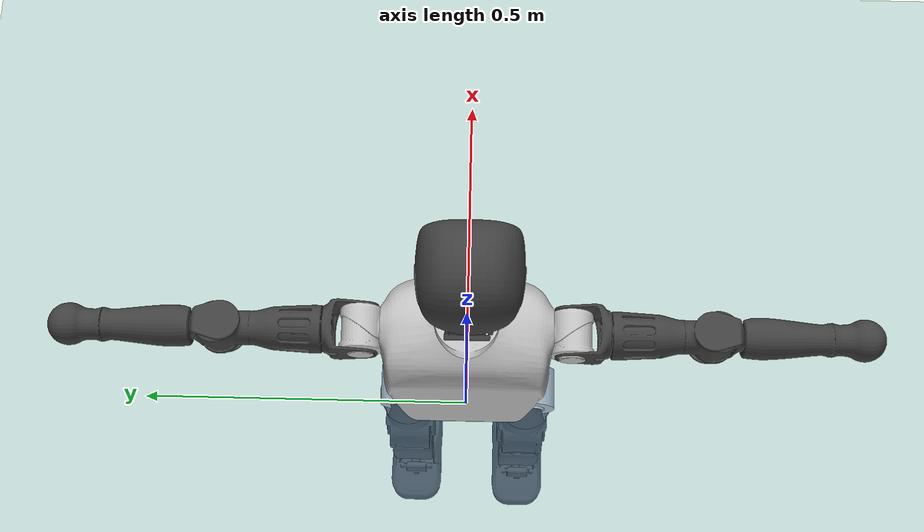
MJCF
<mujoco model="T1">
  <compiler angle="radian" assetdir="assets" balanceinertia="true" inertiafromgeom="false"/>

  <option timestep="0.005" density="1.2" viscosity="2e-05"/>

  <size nkey="1"/>

  <visual>
    <quality shadowsize="8192"/>
    <map shadowclip="0.5"/>
  </visual>

  <default>
    <default class="/">
      <joint armature="0.01" damping="0.01" frictionloss="0.1"/>
      <geom contype="0" conaffinity="0" group="1" solref="-1000 -80"/>
      <site size="0.01 0.005 0.005" group="5"/>
      <general forcelimited="true" biastype="affine" gainprm="25" biasprm="0 -25 -0.6"/>
      <default class="t1">
        <geom rgba="0.25 0.25 0.25 1"/>
        <default class="visual">
          <geom type="mesh" group="2"/>
        </default>
        <default class="collision">
          <geom group="3"/>
        </default>
        <default class="foot">
          <geom size="0.1115 0.05 0.015" type="box" condim="6" group="4" priority="1" solimp="0.015 1 0.015"/>
        </default>
        <default class="reward_collision_sphere">
          <geom group="5" rgba="1 0 0 1"/>
        </default>
      </default>
    </default>
  </default>

  <asset>
    <texture type="skybox" colorspace="auto" name="//unnamed_texture_0" builtin="gradient" rgb1="0.95 0.95 0.95" rgb2="0.95 0.95 0.95" width="100" height="600"/>
    <texture type="2d" colorspace="auto" name="texplane" builtin="checker" rgb1="0.345 0.575 0.748" rgb2="0.345 0.575 0.748" markrgb="1 1 1" width="512" height="512"/>
    <material name="MatPlane" class="/" texture="texplane" texuniform="true" texrepeat="2 2" specular="0.9"/>
    <mesh name="Trunk" class="/" file="Trunk.stl"/>
    <mesh name="H1" class="/" file="H1.stl"/>
    <mesh name="H2" class="/" file="H2.stl"/>
    <mesh name="AL1" class="/" file="AL1.stl"/>
    <mesh name="AL2" class="/" file="AL2.stl"/>
    <mesh name="AL3" class="/" file="AL3.stl"/>
    <mesh name="left_hand_link" class="/" file="left_hand_link.stl"/>
    <mesh name="AR1" class="/" file="AR1.stl"/>
    <mesh name="AR2" class="/" file="AR2.stl"/>
    <mesh name="AR3" class="/" file="AR3.stl"/>
    <mesh name="right_hand_link" class="/" file="right_hand_link.stl"/>
    <mesh name="Waist" class="/" file="Waist.stl"/>
    <mesh name="Hip_Pitch_Left" class="/" file="Hip_Pitch_Left.stl"/>
    <mesh name="Hip_Roll_Left" class="/" file="Hip_Roll_Left.stl"/>
    <mesh name="Hip_Yaw_Left" class="/" file="Hip_Yaw_Left.stl"/>
    <mesh name="Shank_Left" class="/" file="Shank_Left.stl"/>
    <mesh name="Ankle_Cross_Left" class="/" file="Ankle_Cross_Left.stl"/>
    <mesh name="left_foot_link" class="/" file="left_foot_link.stl"/>
    <mesh name="Hip_Pitch_Right" class="/" file="Hip_Pitch_Right.stl"/>
    <mesh name="Hip_Roll_Right" class="/" file="Hip_Roll_Right.stl"/>
    <mesh name="Hip_Yaw_Right" class="/" file="Hip_Yaw_Right.stl"/>
    <mesh name="Shank_Right" class="/" file="Shank_Right.stl"/>
    <mesh name="Ankle_Cross_Right" class="/" file="Ankle_Cross_Right.stl"/>
    <mesh name="right_foot_link" class="/" file="right_foot_link.stl"/>
  </asset>

  <worldbody>
    <geom name="floor" class="/" size="100 100 0.125" type="plane" group="0" material="MatPlane"/>
    <light name="toplight_shadow" class="/" pos="0 0 5" dir="0.0990148 0.0990148 -0.990148" type="directional" ambient="0.04 0.04 0.04" diffuse="0.55 0.55 0.55" specular="0.12 0.12 0.12"/>
    <light name="toplight_fill" class="/" pos="0 0 5" dir="0.0990148 0.0990148 -0.990148" type="directional" castshadow="false" ambient="0.04 0.04 0.04" diffuse="0.3 0.3 0.3" specular="0.08 0.08 0.08"/>
    <body name="trunk" childclass="t1" pos="2.17452e-05 0.000742403 0.000417163" quat="1 0.000148373 -9.05614e-05 0.000181762">
      <inertial pos="0.0504785 0.000250795 0.108776" quat="0.999954 0.00265348 -0.00917229 -0.000172953" mass="10.4682" diaginertia="0.0606125 0.0586893 0.0663964"/>
      <joint name="//unnamed_joint_0" type="free" armature="0" damping="0" frictionloss="0"/>
      <geom name="//unnamed_geom_1" class="visual" rgba="0.76 0.76 0.76 1" mesh="Trunk"/>
      <geom name="//unnamed_geom_2" class="collision" size="0.0722641 0.0963521 0.144528" pos="0.0547269 0 0.123811" type="box"/>
      <geom name="//unnamed_geom_3" class="reward_collision_sphere" size="0.110805" pos="0.0547269 0 0.103176"/>
      <geom name="//unnamed_geom_4" class="reward_collision_sphere" size="0.0144528" pos="0.0547269 0.0804683 0"/>
      <geom name="//unnamed_geom_5" class="reward_collision_sphere" size="0.0144528" pos="0.0547269 -0.0804683 0"/>
      <geom name="//unnamed_geom_6" class="reward_collision_sphere" size="0.0144528" pos="0.0547269 0.101295 0.185717"/>
      <geom name="//unnamed_geom_7" class="reward_collision_sphere" size="0.0144528" pos="0.0547269 -0.101295 0.185717"/>
      <site name="imu" pos="0.00165032 0.000332155 -0.00125186" size="0.00963521"/>
      <camera name="track" pos="0 -1.89337 0" quat="0.707107 0.707107 0 0" mode="trackcom"/>
      <camera name="ego_camera" pos="0.111278 0 0.43334" quat="-0.5 -0.5 0.5 0.5"/>
      <body name="H1" pos="0.0553165 -0.000221248 0.248743" quat="1 -7.05363e-06 4.6069e-06 -6.1389e-06">
        <inertial pos="-0.00121948 -0.0020113 0.0592233" quat="0.763428 -0.0118742 0.00116215 0.645783" mass="0.400043" diaginertia="0.000153329 0.000168388 0.000176193"/>
        <joint name="AAHead_yaw" pos="0 0 0" axis="-0.000528377 6.89717e-05 1" range="-1.56328 1.57311" armature="0.0104675" damping="0.0126891" frictionloss="0.103778"/>
        <geom name="//unnamed_geom_8" class="visual" mesh="H1"/>
        <body name="H2" pos="0.000457905 -0.0025624 0.0644689" quat="1 -0.000316134 0.000335238 0.000214889">
          <inertial pos="0.00714457 -0.000608886 0.0996532" quat="0.988574 0.104406 -0.0717615 -0.0816731" mass="0.560352" diaginertia="0.00129911 0.00143087 0.00202575"/>
          <joint name="Head_pitch" pos="0 0 0" axis="-0.00252367 -0.999988 0.0041764" stiffness="0.000165089" range="-1.21348 0.359513" armature="0.00944098" damping="0" frictionloss="0.0984229"/>
          <geom name="//unnamed_geom_9" class="visual" mesh="H2"/>
          <geom name="//unnamed_geom_10" class="collision" size="0.0770817" pos="0.00912115 0 0.113494"/>
          <geom name="//unnamed_geom_11" class="reward_collision_sphere" size="0.0867169" pos="0.0182423 0 0.103176"/>
        </body>
      </body>
      <body name="AL1" pos="0.0532924 0.101534 0.224412" quat="0.999999 0.000550191 0.000554098 0.000890732">
        <inertial pos="-0.000761077 0.0427775 -0.00030799" quat="0.504421 0.495648 -0.504453 0.495398" mass="0.478558" diaginertia="0.000869656 0.000967231 0.000339953"/>
        <joint name="Left_Shoulder_Pitch" pos="0 0 0" axis="0.005077 0.999986 -0.00173162" stiffness="0.00239753" range="-3.2967 1.26011" armature="0.00964072" damping="0" frictionloss="0.0930881"/>
        <geom name="//unnamed_geom_12" class="visual" rgba="0.76 0.76 0.76 1" mesh="AL1"/>
        <body name="AL2" pos="-0.000189645 0.0438709 -0.000690102" quat="1 -8.6258e-05 0.000192943 0.000133512">
          <inertial pos="0.0043712 0.0374973 0.000467484" quat="0.488494 0.510742 -0.488008 0.512215" mass="0.141681" diaginertia="0.000251885 0.000260977 0.0002073"/>
          <joint name="Left_Shoulder_Roll" pos="0 0 0" axis="-0.999998 -0.0017078 0.00138507" range="-1.58819 1.73978" armature="0.0105379" damping="0.00773016" frictionloss="0.0956529"/>
          <geom name="//unnamed_geom_13" class="visual" mesh="AL2"/>
          <body name="AL3" pos="-0.000113725 0.0579647 -0.000421763" quat="1 4.06929e-06 0.000359753 1.50611e-05">
            <inertial pos="0.000965094 0.0789991 -0.00117515" quat="0.705399 0.708807 0.000565516 -0.00214894" mass="0.88571" diaginertia="0.00816471 0.00965028 0.000714286"/>
            <joint name="Left_Elbow_Pitch" pos="0 0 0" axis="-0.00447263 -0.99999 -0.000930089" stiffness="0.0010187" range="-2.31385 2.28955" armature="0.0107803" damping="0.00881751" frictionloss="0.096797"/>
            <geom name="//unnamed_geom_14" class="visual" mesh="AL3"/>
            <geom name="//unnamed_geom_15" class="collision" size="0.0289056 0.0722641" pos="0 0.0473343 0" quat="0.707105 0.707108 0 0" type="cylinder"/>
            <geom name="//unnamed_geom_16" class="reward_collision_sphere" size="0.0346868"/>
            <body name="left_hand_link" pos="0.00110993 0.13947 0.000604375" quat="1 0.000205369 -0.000638818 0.000643401">
              <inertial pos="-0.00197741 0.102855 0.00011822" quat="0.709404 0.704801 0.00119549 0.000335088" mass="0.294171" diaginertia="0.00506685 0.00611598 0.000256441"/>
              <joint name="Left_Elbow_Yaw" pos="0 0 0" axis="0.00151015 -0.00109109 0.999998" stiffness="0.000730638" range="-2.44553 -0.0386616" armature="0.00946682" damping="0.00854456" frictionloss="0.094785"/>
              <geom name="//unnamed_geom_17" class="visual" mesh="left_hand_link"/>
              <geom name="//unnamed_geom_18" class="collision" size="0.0289056 0.0843081" pos="0 0.123069 0" quat="0.707105 0.707108 0 0" type="cylinder"/>
              <geom name="//unnamed_geom_19" class="reward_collision_sphere" size="0.0481761"/>
              <geom name="//unnamed_geom_20" class="reward_collision_sphere" size="0.0337232" pos="0 0.104135 0"/>
              <geom name="//unnamed_geom_21" class="reward_collision_sphere" size="0.0337232" pos="0 0.203537 0"/>
            </body>
          </body>
        </body>
      </body>
      <body name="AR1" pos="0.0509917 -0.101077 0.225294" quat="1 -0.000265486 0.000303844 0.000517479">
        <inertial pos="-0.000820863 -0.0451358 0.000179443" quat="0.503997 0.494896 -0.505358 0.49566" mass="0.461863" diaginertia="0.00085915 0.000965453 0.000332962"/>
        <joint name="Right_Shoulder_Pitch" pos="0 0 0" axis="0.0017993 -0.999955 0.00927366" range="-1.23135 3.32342" armature="0.0102387" damping="0.0136672" frictionloss="0.100444"/>
        <geom name="//unnamed_geom_22" class="visual" rgba="0.76 0.76 0.76 1" mesh="AR1"/>
        <body name="AR2" pos="0.00145198 -0.0433446 0.000388746" quat="1 0.000397916 0.000342075 0.000791551">
          <inertial pos="0.00369392 -0.0354835 0.00104952" quat="0.507838 0.489049 -0.512388 0.490296" mass="0.140063" diaginertia="0.000252771 0.000267555 0.000207267"/>
          <joint name="Right_Shoulder_Roll" pos="0 0 0" axis="-0.999975 0.00457852 0.00534868" range="-1.76051 1.55065" armature="0.00956598" damping="0.00342312" frictionloss="0.107275"/>
          <geom name="//unnamed_geom_23" class="visual" mesh="AR2"/>
          <body name="AR3" pos="-0.00066303 -0.0586795 -0.00240816" quat="1 -2.01318e-05 9.54329e-06 1.21758e-05">
            <inertial pos="-7.96562e-05 -0.0825082 0.00101547" quat="0.704824 0.709365 0.00497192 -0.000706959" mass="0.913331" diaginertia="0.00813303 0.00980287 0.000739156"/>
            <joint name="Right_Elbow_Pitch" pos="0 0 0" axis="0.00545992 0.99998 0.00303313" range="-2.29916 2.27645" armature="0.00878554" damping="0.0100269" frictionloss="0.0960501"/>
            <geom name="//unnamed_geom_24" class="visual" mesh="AR3"/>
            <geom name="//unnamed_geom_25" class="collision" size="0.0289056 0.0722641" pos="0 -0.0473343 0" quat="0.707105 0.707108 0 0" type="cylinder"/>
            <geom name="//unnamed_geom_26" class="reward_collision_sphere" size="0.0346868"/>
            <body name="right_hand_link" pos="-0.000458661 -0.139132 -0.000280827" quat="1 -7.39611e-06 2.27116e-05 -0.000343382">
              <inertial pos="1.36888e-05 -0.102679 0.00281012" quat="0.706233 0.707979 0.000602654 -0.000147183" mass="0.295185" diaginertia="0.00516979 0.00628061 0.000253845"/>
              <joint name="Right_Elbow_Yaw" pos="0 0 0" axis="-0.00342137 -0.00053995 0.999994" stiffness="0.000842136" range="-0.00440003 2.43662" armature="0.0103499" damping="0" frictionloss="0.0984765"/>
              <geom name="//unnamed_geom_27" class="visual" mesh="right_hand_link"/>
              <geom name="//unnamed_geom_28" class="collision" size="0.0289056 0.0843081" pos="0 -0.123069 0" quat="0.707105 0.707108 0 0" type="cylinder"/>
              <geom name="//unnamed_geom_29" class="reward_collision_sphere" size="0.0481761"/>
              <geom name="//unnamed_geom_30" class="reward_collision_sphere" size="0.0337232" pos="0 -0.104135 0"/>
              <geom name="//unnamed_geom_31" class="reward_collision_sphere" size="0.0337232" pos="0 -0.203537 0"/>
            </body>
          </body>
        </body>
      </body>
      <body name="Waist" pos="0.057565 -0.00229816 -0.116852" quat="1 0.000264319 0.000209153 -0.00022985">
        <inertial pos="0.000741671 -3.64435e-05 0.00772959" quat="0.982938 -0.00545038 -0.183827 0.00320715" mass="2.2433" diaginertia="0.00330947 0.0038932 0.00538423"/>
        <joint name="Waist" pos="0 0 0" axis="-0.00747812 0.00258871 0.999969" range="-1.5694 1.54121" armature="0.00965383" damping="0.0104531" frictionloss="0.102638"/>
        <geom name="//unnamed_geom_32" class="visual" mesh="Waist"/>
        <body name="Hip_Pitch_Left" pos="0.00159431 0.100057 -0.00015601" quat="1 0.000409846 0.000434929 5.57047e-05">
          <inertial pos="0.000576269 -0.0066253 -0.0191176" quat="0.975128 0.221089 0.0156733 0.000327224" mass="0.908437" diaginertia="0.00114387 0.00113987 0.0014563"/>
          <joint name="Left_Hip_Pitch" pos="0 0 0" axis="-0.0107246 0.999909 0.00821949" range="-1.79375 1.61021" armature="0.00936958" damping="0.00288767" frictionloss="0.0971744"/>
          <geom name="//unnamed_geom_33" class="visual" rgba="0.76 0.76 0.76 1" mesh="Hip_Pitch_Left"/>
          <body name="Hip_Roll_Left" pos="0.00118789 0.00217388 -0.0201504" quat="0.999999 0.000197685 0.000236945 -0.00127671">
            <inertial pos="0.000264438 -0.000182292 -0.0553371" quat="0.707577 -0.00558583 -0.00148244 0.706612" mass="0.336296" diaginertia="0.00109284 0.00112573 0.000586212"/>
            <joint name="Left_Hip_Roll" pos="0 0 0" axis="-0.99997 -0.000675575 0.00769381" stiffness="0.000798811" range="-1.58793 0.21009" armature="0.0100266" damping="0.00910384" frictionloss="0.0967031"/>
            <geom name="//unnamed_geom_34" class="visual" mesh="Hip_Roll_Left"/>
            <geom name="//unnamed_geom_35" class="reward_collision_sphere" size="0.0529937"/>
            <body name="Hip_Yaw_Left" pos="-0.000164773 -8.6619e-06 -0.0840799" quat="1 0.00010226 -0.000119451 -1.22072e-05">
              <inertial pos="-0.00572964 -0.00105058 -0.0919582" quat="0.70128 -0.0342301 -0.0242247 0.711652" mass="1.92214" diaginertia="0.0161003 0.0187854 0.00296824"/>
              <joint name="Left_Hip_Yaw" pos="0 0 0" axis="-0.00104884 0.000159564 -0.999999" range="-1.01838 1.00976" armature="0.00961029" damping="0.00507524" frictionloss="0.0988511"/>
              <geom name="//unnamed_geom_36" class="visual" mesh="Hip_Yaw_Left"/>
              <geom name="//unnamed_geom_37" class="collision" size="0.0481761 0.0770817" type="cylinder"/>
              <body name="Shank_Left" pos="-0.0109878 -0.00112476 -0.137831" quat="1 0.000182253 0.000180062 -0.000199425">
                <inertial pos="-0.00451828 -0.000171192 -0.128859" quat="0.997499 0.00496588 -0.0275425 0.0649106" mass="1.53132" diaginertia="0.0218288 0.0262517 0.00211882"/>
                <joint name="Left_Knee_Pitch" pos="0 0 0" axis="0.00389154 0.999984 0.0041335" range="-0.0200158 2.35457" armature="0.0103801" damping="0.00542098" frictionloss="0.0988613"/>
                <geom name="//unnamed_geom_38" class="visual" mesh="Shank_Left"/>
                <geom name="//unnamed_geom_39" class="collision" size="0.0481761 0.0722641" pos="0 0 -0.123811" type="cylinder"/>
                <geom name="//unnamed_geom_40" class="reward_collision_sphere" size="0.0626289"/>
                <body name="Ankle_Cross_Left" pos="-2.77364e-05 0.000506579 -0.290174" quat="1 -0.000283683 -0.000467656 0.0006339">
                  <inertial pos="-0.00237201 -0.00196579 -0.00874066" quat="0.442238 0.55049 0.550195 0.445726" mass="0.0652197" diaginertia="1.83927e-05 1.98239e-05 1.33086e-05"/>
                  <joint name="Left_Ankle_Pitch" pos="0 0 0" axis="0.000988941 0.999998 -0.00144904" stiffness="0.00200474" range="-0.866194 0.331733" armature="0.010231" damping="0.00780337" frictionloss="0.0988451"/>
                  <geom name="//unnamed_geom_41" class="visual" mesh="Ankle_Cross_Left"/>
                  <body name="left_foot_link" pos="-0.00127214 -0.00192702 -0.0119814" quat="1 -9.04519e-05 9.35393e-05 0.000118892">
                    <inertial pos="0.0012304 -0.000469356 -0.0071577" quat="-0.00166368 0.62231 -0.00074835 0.782769" mass="0.620498" diaginertia="0.00171895 0.00182694 0.00260535"/>
                    <joint name="Left_Ankle_Roll" pos="0 0 0" axis="-0.999999 0.00121988 0.000959945" range="-0.433677 0.441895" armature="0.00886587" damping="0.0114962" frictionloss="0.0979482"/>
                    <geom name="//unnamed_geom_42" class="visual" mesh="left_foot_link"/>
                    <geom name="left_foot" class="foot" size="0.111825 0.0484818 0.0140595" pos="0.00912115 0 -0.0154764"/>
                    <geom name="//unnamed_geom_44" class="reward_collision_sphere" size="0.0501031" pos="0.00912115 0 -0.0154764"/>
                    <geom name="//unnamed_geom_45" class="reward_collision_sphere" size="0.0289056" pos="0.086651 -0.0217738 -0.0154764"/>
                    <geom name="//unnamed_geom_46" class="reward_collision_sphere" size="0.0289056" pos="-0.0638481 -0.0217738 -0.0154764"/>
                    <site name="left_foot" class="foot" pos="0.00912115 0 -0.0154764" size="0.00963521"/>
                  </body>
                </body>
              </body>
            </body>
          </body>
        </body>
        <body name="Hip_Pitch_Right" pos="-0.0014335 -0.101469 -4.00826e-05" quat="0.999999 -0.000348715 0.00120151 0.000539842">
          <inertial pos="0.000262756 0.00476588 -0.0185612" quat="0.973607 -0.227606 0.0162231 -0.0045631" mass="0.890385" diaginertia="0.00111507 0.00109094 0.00144493"/>
          <joint name="Right_Hip_Pitch" pos="0 0 0" axis="0.00335452 -0.999994 0.000626944" range="-1.57826 1.80671" armature="0.010039" damping="0.0116625" frictionloss="0.106049"/>
          <geom name="//unnamed_geom_47" class="visual" rgba="0.76 0.76 0.76 1" mesh="Hip_Pitch_Right"/>
          <body name="Hip_Roll_Right" pos="-0.000455258 0.00146877 -0.019231" quat="1 0.0001948 -4.48114e-05 0.000191741">
            <inertial pos="-0.00055748 0.00198745 -0.0573501" quat="0.709046 -0.00820332 -0.00902781 0.705057" mass="0.339006" diaginertia="0.00109001 0.00113922 0.000595198"/>
            <joint name="Right_Hip_Roll" pos="0 0 0" axis="-0.999999 -0.00108045 0.000824233" range="-0.208946 1.56822" armature="0.00920146" damping="0.0104356" frictionloss="0.0986559"/>
            <geom name="//unnamed_geom_48" class="visual" mesh="Hip_Roll_Right"/>
            <geom name="//unnamed_geom_49" class="reward_collision_sphere" size="0.0529937"/>
            <body name="Hip_Yaw_Right" pos="-0.000184927 -0.000211201 -0.0832569" quat="1 0.000336388 0.000255794 -6.13446e-05">
              <inertial pos="-0.00648202 -0.000287836 -0.0927548" quat="0.714763 -0.0312369 -0.0334997 0.697865" mass="1.90375" diaginertia="0.016309 0.0190761 0.00307078"/>
              <joint name="Right_Hip_Yaw" pos="0 0 0" axis="0.00373275 0.00206856 -0.999991" stiffness="0.00367627" range="-0.99575 0.980966" armature="0.0085236" damping="0.0135772" frictionloss="0.104961"/>
              <geom name="//unnamed_geom_50" class="visual" mesh="Hip_Yaw_Right"/>
              <geom name="//unnamed_geom_51" class="collision" size="0.0481761 0.0770817" type="cylinder"/>
              <body name="Shank_Right" pos="-0.0138208 0.00133568 -0.138332" quat="1 -0.000592823 0.00043991 -0.000470527">
                <inertial pos="-0.00565775 0.000497666 -0.124585" quat="0.999287 -0.00190913 -0.0239785 -0.0290971" mass="1.58541" diaginertia="0.0223213 0.0264489 0.0023663"/>
                <joint name="Right_Knee_Pitch" pos="0 0 0" axis="-0.00426155 -0.999962 -0.00761399" range="-2.31847 -0.0269054" armature="0.00953795" damping="0.00962274" frictionloss="0.101271"/>
                <geom name="//unnamed_geom_52" class="visual" mesh="Shank_Right"/>
                <geom name="//unnamed_geom_53" class="collision" size="0.0481761 0.0722641" pos="0 0 -0.123811" type="cylinder"/>
                <geom name="//unnamed_geom_54" class="reward_collision_sphere" size="0.0626289"/>
                <body name="Ankle_Cross_Right" pos="-5.44193e-05 -0.00198324 -0.289119" quat="0.999999 0.000404316 0.000914061 -0.000553439">
                  <inertial pos="-0.00236494 0.00111366 -0.00757218" quat="0.441565 0.552736 0.54955 0.444407" mass="0.0654556" diaginertia="1.81596e-05 1.95037e-05 1.30774e-05"/>
                  <joint name="Right_Ankle_Pitch" pos="0 0 0" axis="0.00492306 -0.999981 -0.00375987" stiffness="0.00259846" range="-0.374259 0.876507" armature="0.00978971" damping="0.0098887" frictionloss="0.0945698"/>
                  <geom name="//unnamed_geom_55" class="visual" mesh="Ankle_Cross_Right"/>
                  <body name="right_foot_link" pos="0.000141665 -0.00257717 -0.0115749" quat="1 2.75186e-05 5.32404e-05 -9.92942e-05">
                    <inertial pos="-0.000606682 -0.00108662 -0.0104603" quat="-0.00132939 0.622537 -0.000439921 0.782589" mass="0.620277" diaginertia="0.00171462 0.00181359 0.00255301"/>
                    <joint name="Right_Ankle_Roll" pos="0 0 0" axis="-1 1.8708e-05 -2.18265e-05" range="-0.39252 0.438391" armature="0.0102339" damping="0.00818812" frictionloss="0.0948719"/>
                    <geom name="//unnamed_geom_56" class="visual" mesh="right_foot_link"/>
                    <geom name="right_foot" class="foot" size="0.0938138 0.0481202 0.0140208" pos="0.00912115 0 -0.0154764"/>
                    <geom name="//unnamed_geom_58" class="reward_collision_sphere" size="0.0385408"/>
                    <geom name="//unnamed_geom_59" class="reward_collision_sphere" size="0.0289056" pos="0.00912115 0 -0.0154764"/>
                    <geom name="//unnamed_geom_60" class="reward_collision_sphere" size="0.0289056" pos="0.086651 0.0217738 -0.0154764"/>
                    <geom name="//unnamed_geom_61" class="reward_collision_sphere" size="0.0289056" pos="-0.0638481 0.0217738 -0.0154764"/>
                    <site name="right_foot" class="foot" pos="0.00912115 0 -0.0154764" size="0.00963521"/>
                  </body>
                </body>
              </body>
            </body>
          </body>
        </body>
      </body>
    </body>
  </worldbody>

  <contact>
    <pair class="/" geom1="floor" geom2="left_foot" name="//unnamed_contact_0"/>
    <pair class="/" geom1="floor" geom2="right_foot" name="//unnamed_contact_1"/>
  </contact>

  <actuator>
    <general name="AAHead_yaw" class="/" joint="AAHead_yaw" forcerange="-6.85711 6.85711" gainprm="24.3776" biasprm="0 -24.3776 -0.584271"/>
    <general name="Head_pitch" class="/" joint="Head_pitch" forcerange="-6.79125 6.79125" gainprm="24.3776" biasprm="0 -24.3776 -0.584271"/>
    <general name="Left_Shoulder_Pitch" class="/" joint="Left_Shoulder_Pitch" forcerange="-17.2249 17.2249" gainprm="24.3776" biasprm="0 -24.3776 -0.584271"/>
    <general name="Left_Shoulder_Roll" class="/" joint="Left_Shoulder_Roll" forcerange="-18.0274 18.0274" gainprm="24.3776" biasprm="0 -24.3776 -0.584271"/>
    <general name="Left_Elbow_Pitch" class="/" joint="Left_Elbow_Pitch" forcerange="-17.0893 17.0893" gainprm="24.3776" biasprm="0 -24.3776 -0.584271"/>
    <general name="Left_Elbow_Yaw" class="/" joint="Left_Elbow_Yaw" forcerange="-17.3022 17.3022" gainprm="24.3776" biasprm="0 -24.3776 -0.584271"/>
    <general name="Right_Shoulder_Pitch" class="/" joint="Right_Shoulder_Pitch" forcerange="-17.5384 17.5384" gainprm="24.3776" biasprm="0 -24.3776 -0.584271"/>
    <general name="Right_Shoulder_Roll" class="/" joint="Right_Shoulder_Roll" forcerange="-17.9825 17.9825" gainprm="24.3776" biasprm="0 -24.3776 -0.584271"/>
    <general name="Right_Elbow_Pitch" class="/" joint="Right_Elbow_Pitch" forcerange="-17.0085 17.0085" gainprm="24.3776" biasprm="0 -24.3776 -0.584271"/>
    <general name="Right_Elbow_Yaw" class="/" joint="Right_Elbow_Yaw" forcerange="-17.6404 17.6404" gainprm="24.3776" biasprm="0 -24.3776 -0.584271"/>
    <general name="Waist" class="/" joint="Waist" forcerange="-27.7538 27.7538" gainprm="24.3776" biasprm="0 -24.3776 -0.584271"/>
    <general name="Left_Hip_Pitch" class="/" joint="Left_Hip_Pitch" forcerange="-44.7573 44.7573" gainprm="24.3776" biasprm="0 -24.3776 -0.584271"/>
    <general name="Left_Hip_Roll" class="/" joint="Left_Hip_Roll" forcerange="-29.1565 29.1565" gainprm="24.3776" biasprm="0 -24.3776 -0.584271"/>
    <general name="Left_Hip_Yaw" class="/" joint="Left_Hip_Yaw" forcerange="-29.1066 29.1066" gainprm="24.3776" biasprm="0 -24.3776 -0.584271"/>
    <general name="Left_Knee_Pitch" class="/" joint="Left_Knee_Pitch" forcerange="-55.0309 55.0309" gainprm="24.3776" biasprm="0 -24.3776 -0.584271"/>
    <general name="Left_Ankle_Pitch" class="/" joint="Left_Ankle_Pitch" forcerange="-20.8262 20.8262" gainprm="24.3776" biasprm="0 -24.3776 -0.584271"/>
    <general name="Left_Ankle_Roll" class="/" joint="Left_Ankle_Roll" forcerange="-13.2096 13.2096" gainprm="24.3776" biasprm="0 -24.3776 -0.584271"/>
    <general name="Right_Hip_Pitch" class="/" joint="Right_Hip_Pitch" forcerange="-43.4534 43.4534" gainprm="24.3776" biasprm="0 -24.3776 -0.584271"/>
    <general name="Right_Hip_Roll" class="/" joint="Right_Hip_Roll" forcerange="-27.8076 27.8076" gainprm="24.3776" biasprm="0 -24.3776 -0.584271"/>
    <general name="Right_Hip_Yaw" class="/" joint="Right_Hip_Yaw" forcerange="-30.9503 30.9503" gainprm="24.3776" biasprm="0 -24.3776 -0.584271"/>
    <general name="Right_Knee_Pitch" class="/" joint="Right_Knee_Pitch" forcerange="-56.2295 56.2295" gainprm="24.3776" biasprm="0 -24.3776 -0.584271"/>
    <general name="Right_Ankle_Pitch" class="/" joint="Right_Ankle_Pitch" forcerange="-19.1262 19.1262" gainprm="24.3776" biasprm="0 -24.3776 -0.584271"/>
    <general name="Right_Ankle_Roll" class="/" joint="Right_Ankle_Roll" forcerange="-14.4425 14.4425" gainprm="24.3776" biasprm="0 -24.3776 -0.584271"/>
  </actuator>

  <sensor>
    <gyro site="imu" name="imu_angular_velocity"/>
    <velocimeter site="imu" name="imu_linear_velocity"/>
    <framelinvel objtype="site" objname="left_foot" name="left_foot_global_linear_velocity"/>
    <framelinvel objtype="site" objname="right_foot" name="right_foot_global_linear_velocity"/>
  </sensor>

  <keyframe>
    <key name="home" qpos="0 0 0.6385 1 0 0 0 0 0 0 1.4 0 -0.4 0 -1.4 0 0.4 0 -0.4 0 0 0.8 -0.4 0 0.4 0 0 -0.8 0.4 0"/>
  </keyframe>
</mujoco>
